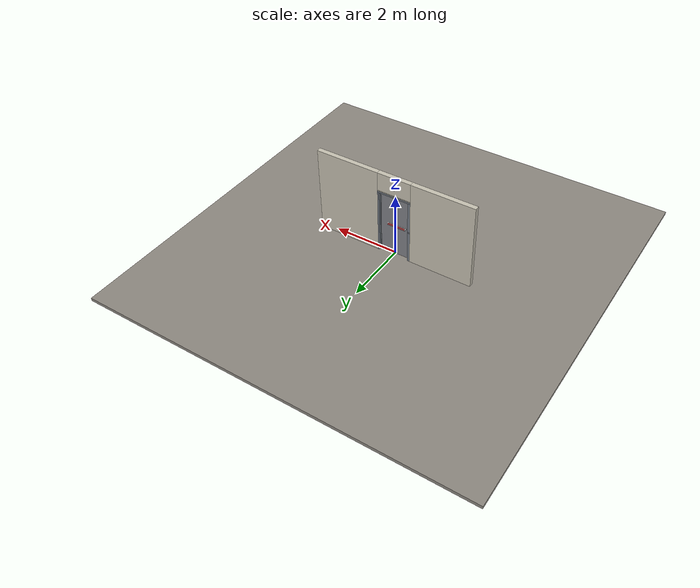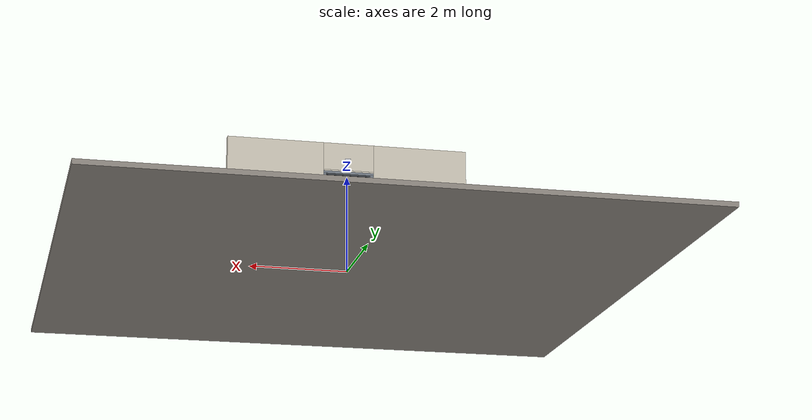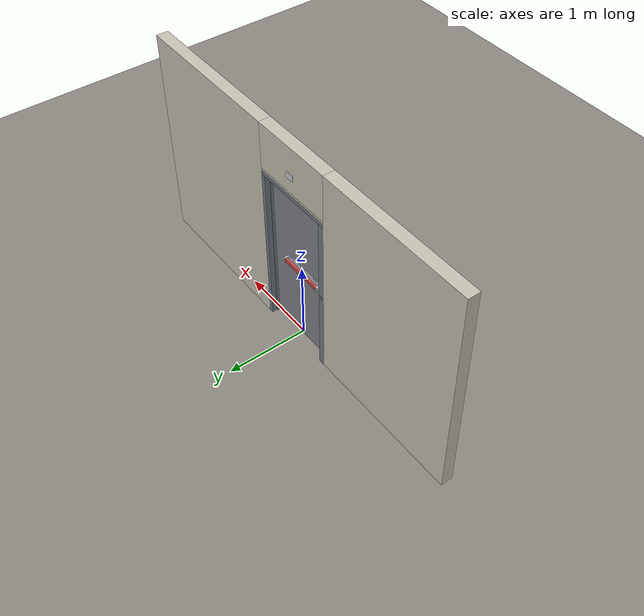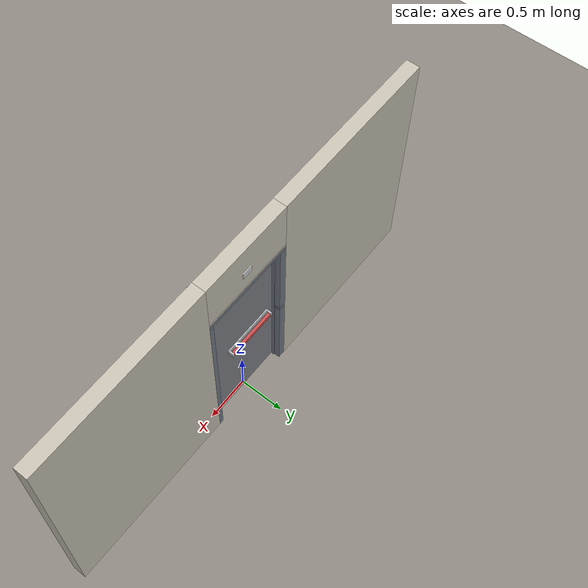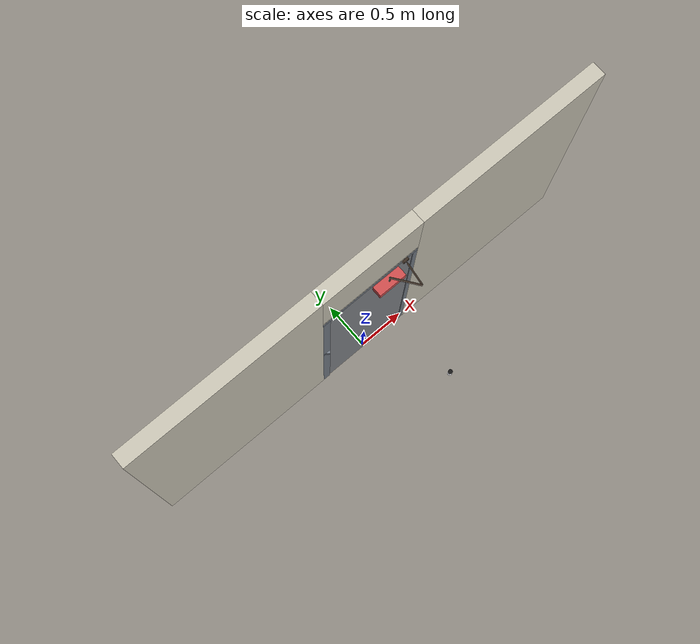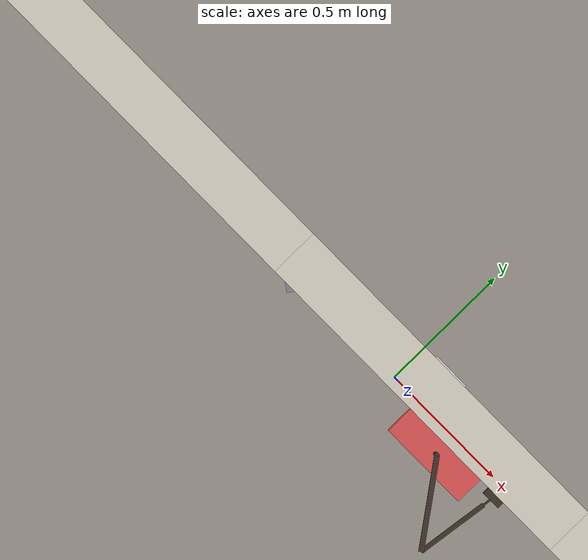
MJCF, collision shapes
<?xml version="1.0" ?>
<mujoco model="db0024_swing_single_full">
  <compiler angle="radian" meshdir="../../hardware" texturedir="../../textures" autolimits="true" inertiafromgeom="false"/>
  <option timestep="0.002" integrator="implicitfast" cone="elliptic" impratio="10" noslip_iterations="3">
    <flag multiccd="enable"/>
  </option>
  <size memory="16M"/>
  <default>
    <geom condim="4" solref="0.005 1" solimp="0.95 0.99 0.001"/>
    <joint solreflimit="0.005 1" solimplimit="0.95 0.99 0.001"/>
    <tendon solreflimit="0.005 1"/>
    <equality solref="0.002 1"/>
  </default>
  <visual>
    <headlight ambient="0.4 0.4 0.4" diffuse="0.7 0.7 0.7" specular="0.2 0.2 0.2"/>
    <quality shadowsize="4096"/>
    <map znear="0.01" zfar="60"/>
  </visual>
  <asset>
    <mesh name="closer_body_fdc4667657" file="closer_body_fdc4667657.obj"/>
    <mesh name="exit_sign_a6449bfa2c" file="exit_sign_a6449bfa2c.obj"/>
    <mesh name="hinge_e22b26c0c1" file="hinge_e22b26c0c1.obj"/>
    <mesh name="hinge_jamb_e1d088f8dc" file="hinge_jamb_e1d088f8dc.obj"/>
    <mesh name="touchbar_pad_5c88f1c24f" file="touchbar_pad_5c88f1c24f.obj"/>
    <material name="mat_floor" rgba="0.55 0.53 0.5 1" specular="0.2" shininess="0.15" reflectance="0"/>
    <material name="mat_wall" rgba="0.78 0.76 0.7 1" specular="0.2" shininess="0.1" reflectance="0"/>
    <material name="mat_leaf" rgba="0.5 0.51 0.53 1" specular="0.23" shininess="0.39" reflectance="0.02"/>
    <material name="mat_hinge" rgba="0.65 0.66 0.68 1" specular="0.74" shininess="0.5" reflectance="0.36"/>
    <material name="mat_op_stainless" rgba="0.75 0.76 0.77 1" specular="0.8" shininess="0.65" reflectance="0.4"/>
    <material name="mat_bolt" rgba="0.75 0.76 0.77 1" specular="0.8" shininess="0.65" reflectance="0.4"/>
    <material name="mat_frame" rgba="0.45 0.48 0.52 1" specular="0.32" shininess="0.6" reflectance="0.08"/>
    <material name="mat_seal" rgba="0.1 0.1 0.1 1" specular="0.2" shininess="0.1" reflectance="0"/>
    <material name="mat_closer" rgba="0.22 0.17 0.13 1" specular="0.8" shininess="0.6" reflectance="0.4"/>
    <material name="mat_exit_sign" rgba="0.85 0.1 0.1 1" specular="0.2" shininess="0.6" reflectance="0"/>
    <material name="mat_sign_bracket" rgba="0.8 0.81 0.83 1" specular="0.8" shininess="0.6" reflectance="0.4"/>
    <material name="mat_bumper_stop" rgba="0.08 0.08 0.08 1" specular="0.2" shininess="0.1" reflectance="0"/>
    <material name="mat_stop_base" rgba="0.9 0.9 0.92 1" specular="0.8" shininess="0.9" reflectance="0.4"/>
    <texture name="skybox" type="skybox" builtin="gradient" rgb1="0.6 0.7 0.85" rgb2="0.9 0.92 0.95" width="256" height="256"/>
  </asset>
  <worldbody>
    <light name="sun" pos="1.5 -2.5 4" dir="-0.3 0.5 -0.8" directional="true" diffuse="0.8 0.8 0.8" specular="0.3 0.3 0.3" castshadow="true"/>
    <light name="fill" pos="-1.5 2.5 3" dir="0.3 -0.5 -0.7" directional="true" diffuse="0.35 0.35 0.4" castshadow="false"/>
    <camera name="robot_view" pos="0 -2.498687 1.734312" xyaxes="1 0 0 0 0.26963 0.962964" fovy="52"/>
    <camera name="far_view" pos="0 2.585687 1.734312" xyaxes="-1 0 0 0 -0.26963 0.962964" fovy="52"/>
    <camera name="iso" pos="-1.932062 -2.091938 2.141063" xyaxes="0.741536 -0.670913 0 0.242917 0.268487 0.932151" fovy="46"/>
    <camera name="detail_handle" pos="-0.1735 -0.7565 1.32" xyaxes="0.97561 0.219512 0 -0.070934 0.315262 0.94635" fovy="38"/>
    <geom name="floor" type="box" size="6 6 0.05" pos="0 0 -0.05" material="mat_floor" group="0" contype="1" conaffinity="1" friction="0.8 0.005 0.0001" density="2400"/>
    <geom name="wall_left" type="box" size="0.97975 0.0725 1.35" pos="-1.52025 0.0435 1.35" material="mat_wall" group="0" contype="1" conaffinity="1" friction="0.6 0.005 0.0001" density="800"/>
    <geom name="wall_right" type="box" size="0.99475 0.0725 1.35" pos="1.50525 0.0435 1.35" material="mat_wall" group="0" contype="1" conaffinity="1" friction="0.6 0.005 0.0001" density="800"/>
    <geom name="wall_header" type="box" size="0.5255 0.0725 0.2875" pos="-0.015 0.0435 2.4125" material="mat_wall" group="0" contype="1" conaffinity="1" friction="0.6 0.005 0.0001" density="800"/>
    <geom name="hinge_0_jamb" type="mesh" mesh="hinge_jamb_e1d088f8dc" pos="0.4575 -0.029 0.259" quat="0 0 1 0" material="mat_hinge" group="1" contype="0" conaffinity="0" density="7850"/>
    <geom name="hinge_1_jamb" type="mesh" mesh="hinge_jamb_e1d088f8dc" pos="0.4575 -0.029 1.025" quat="0 0 1 0" material="mat_hinge" group="1" contype="0" conaffinity="0" density="7850"/>
    <geom name="hinge_2_jamb" type="mesh" mesh="hinge_jamb_e1d088f8dc" pos="0.4575 -0.029 1.861" quat="0 0 1 0" material="mat_hinge" group="1" contype="0" conaffinity="0" density="7850"/>
    <geom name="jamb_hinge" type="box" size="0.025 0.0725 1.0225" pos="0.4855 0.0435 1.0225" material="mat_frame" group="0" contype="1" conaffinity="1" friction="0.6 0.005 0.0001" density="300"/>
    <geom name="strike_1040_wall_n" type="box" size="0.04 0.05325 0.018" pos="-0.5005 0.06275 1.04" material="mat_frame" group="0" contype="1" conaffinity="1" friction="0.6 0.005 0.0001" density="300"/>
    <geom name="strike_1040_wall_p" type="box" size="0.04 0.008 0.018" pos="-0.5005 -0.0175 1.04" material="mat_frame" group="0" contype="1" conaffinity="1" friction="0.6 0.005 0.0001" density="300"/>
    <geom name="strike_1040_ramp" type="box" size="0.04 0.018028 0.018" pos="-0.503782 -0.018312 1.04" quat="0.957092 0 0 -0.289784" material="mat_frame" group="0" contype="1" conaffinity="1" friction="0.12 0.005 0.0001" density="300"/>
    <geom name="strike_1040_back" type="box" size="0.0285 0.0095 0.018" pos="-0.512 0 1.04" material="mat_frame" group="0" contype="1" conaffinity="1" friction="0.6 0.005 0.0001" density="300"/>
    <geom name="jamb_strike_0" type="box" size="0.04 0.0725 0.511" pos="-0.5005 0.0435 0.511" material="mat_frame" group="0" contype="1" conaffinity="1" friction="0.6 0.005 0.0001" density="300"/>
    <geom name="jamb_strike_1" type="box" size="0.04 0.0725 0.4935" pos="-0.5005 0.0435 1.5515" material="mat_frame" group="0" contype="1" conaffinity="1" friction="0.6 0.005 0.0001" density="300"/>
    <geom name="jamb_head" type="box" size="0.5255 0.0725 0.025" pos="-0.015 0.0435 2.07" material="mat_frame" group="0" contype="1" conaffinity="1" friction="0.6 0.005 0.0001" density="300"/>
    <geom name="head_stud" type="box" size="0.5255 0.0725 0.015" pos="-0.015 0.0435 2.11" material="mat_wall" group="0" contype="1" conaffinity="1" friction="0.6 0.005 0.0001" density="500"/>
    <geom name="stop_hinge" type="box" size="0.0055 0.016 1.0225" pos="0.455 0.0385 1.0225" material="mat_frame" group="0" contype="1" conaffinity="1" friction="0.6 0.005 0.0001" density="300"/>
    <geom name="stop_strike" type="box" size="0.0055 0.016 1.0225" pos="-0.455 0.0385 1.0225" material="mat_frame" group="0" contype="1" conaffinity="1" friction="0.6 0.005 0.0001" density="300"/>
    <geom name="stop_head" type="box" size="0.4605 0.016 0.0055" pos="0 0.0385 2.0395" material="mat_frame" group="0" contype="1" conaffinity="1" friction="0.6 0.005 0.0001" density="300"/>
    <geom name="seal_hinge" type="box" size="0.004 0.0025 1.0225" pos="0.4575 0.0245 1.0225" material="mat_seal" group="1" contype="0" conaffinity="0" density="1100"/>
    <geom name="seal_strike" type="box" size="0.004 0.0025 1.0225" pos="-0.4575 0.0245 1.0225" material="mat_seal" group="1" contype="0" conaffinity="0" density="1100"/>
    <geom name="seal_head" type="box" size="0.4405 0.0025 0.008" pos="0 0.0245 2.033" material="mat_seal" group="1" contype="0" conaffinity="0" density="1100"/>
    <geom name="closer_bracket" type="box" size="0.03 0.012 0.014" pos="0.3605 -0.041 2.075" material="mat_closer" group="1" contype="0" conaffinity="0" density="2700"/>
    <geom name="exit_sign" type="mesh" mesh="exit_sign_a6449bfa2c" pos="0 0.15 2.345" material="mat_exit_sign" group="2" contype="0" conaffinity="0" density="500"/>
    <geom name="exit_sign_bracket" type="box" size="0.05775 0.005 0.035" pos="0 0.1205 2.345" material="mat_sign_bracket" group="2" contype="0" conaffinity="0" density="7850"/>
    <geom name="door_stop_base" type="cylinder" size="0.022 0.003" pos="0.4735 -0.8059 0.003" material="mat_stop_base" group="0" contype="1" conaffinity="1" friction="0.6 0.005 0.0001" density="7850"/>
    <geom name="door_stop_post" type="cylinder" size="0.012 0.0245" pos="0.4735 -0.8059 0.0305" material="mat_stop_base" group="0" contype="1" conaffinity="1" friction="0.6 0.005 0.0001" density="7850"/>
    <geom name="door_stop_bumper" type="cylinder" size="0.022 0.02" pos="0.4735 -0.8059 0.075" material="mat_bumper_stop" group="0" contype="1" conaffinity="1" friction="0.6 0.005 0.0001" density="1100"/>
    <site name="approach_point" pos="0 -1.5 0" quat="1 0 0 0" size="0.05" rgba="0.2 0.9 0.2 0.5" group="4"/>
    <site name="goal_point" pos="0 1.5 0" quat="1 0 0 0" size="0.05" rgba="0.2 0.9 0.2 0.5" group="4"/>
    <site name="door_plane_center" pos="0 0 1.0225" quat="1 0 0 0" size="0.02" rgba="0.2 0.9 0.2 0.5" group="4"/>
    <body name="leaf" pos="0.4605 0 0">
      <inertial pos="-0.419173 -0.016308 1.243445" mass="53.909548" quat="0.519419 -0.51682 -0.467876 -0.494158" diaginertia="3.204963905 22.306769828 25.413464738"/>
      <joint name="leaf_hinge" type="hinge" axis="0 0 1" pos="-0.003 -0.029 0" limited="true" range="0 1.570796" solreflimit="0.02 1" damping="12.25611" frictionloss="2.028006" stiffness="11.567381" springref="-1.882881" armature="0.02"/>
      <geom name="leaf_slab" type="box" size="0.457 0.022 1.016" pos="-0.46 0 1.025" material="mat_leaf" group="0" contype="1" conaffinity="1" friction="0.42 0.005 0.0001" density="1"/>
      <geom name="hinge_0" type="mesh" mesh="hinge_e22b26c0c1" pos="-0.003 -0.029 0.259" quat="0 0 1 0" material="mat_hinge" group="1" contype="0" conaffinity="0" density="7850"/>
      <geom name="hinge_1" type="mesh" mesh="hinge_e22b26c0c1" pos="-0.003 -0.029 1.025" quat="0 0 1 0" material="mat_hinge" group="1" contype="0" conaffinity="0" density="7850"/>
      <geom name="hinge_2" type="mesh" mesh="hinge_e22b26c0c1" pos="-0.003 -0.029 1.861" quat="0 0 1 0" material="mat_hinge" group="1" contype="0" conaffinity="0" density="7850"/>
      <geom name="leaf_exit_device_rail" type="box" size="0.2942 0.006 0.025" pos="-0.5428 0.028 1.04" material="mat_op_stainless" group="0" contype="1" conaffinity="1" friction="0.6 0.005 0.0001" density="3000"/>
      <geom name="leaf_exit_device_rail_end_n" type="box" size="0.01 0.0325 0.025" pos="-0.827 0.0545 1.04" material="mat_op_stainless" group="0" contype="1" conaffinity="1" friction="0.6 0.005 0.0001" density="3000"/>
      <geom name="leaf_exit_device_rail_end_p" type="box" size="0.01 0.0325 0.025" pos="-0.2586 0.0545 1.04" material="mat_op_stainless" group="0" contype="1" conaffinity="1" friction="0.6 0.005 0.0001" density="3000"/>
      <geom name="leaf_latch_bolt_faceplate" type="box" size="0.0006 0.014 0.028" pos="-0.9164 0 1.04" material="mat_bolt" group="1" contype="0" conaffinity="0" density="8500"/>
      <geom name="closer_body" type="mesh" mesh="closer_body_fdc4667657" pos="-0.3 -0.022 1.952" quat="0 0 -0.707107 0.707107" material="mat_closer" group="1" contype="0" conaffinity="0" density="2000"/>
      <geom name="closer_body_col" type="box" size="0.145 0.05 0.035" pos="-0.3 -0.072 1.952" material="mat_closer" group="3" contype="1" conaffinity="1" rgba="0.8 0.3 0.3 0.25" friction="0.6 0.005 0.0001" density="2000"/>
      <geom name="closer_pinion_shaft" type="cylinder" size="0.008 0.0615" pos="-0.3 -0.072 2.0135" material="mat_closer" group="1" contype="0" conaffinity="0" density="2700"/>
      <site name="leaf_edge_mid" pos="-0.917 0 1.016" quat="1 0 0 0" size="0.02" rgba="0.2 0.9 0.2 0.5" group="4"/>
      <body name="leaf_exit_device" pos="-0.5428 0.022 1.04">
        <inertial pos="0 0.05 0" mass="4.39344" quat="0 0 0.707107 0.707107" diaginertia="0.001070901 0.108041192 0.108453077"/>
        <joint name="leaf_exit_device_slide" type="slide" axis="0 -1 0" limited="true" range="0 0.016" damping="153.70715" frictionloss="0.5" stiffness="1300" springref="-0.015385" armature="0.15"/>
        <geom name="leaf_exit_device_pad" type="mesh" mesh="touchbar_pad_5c88f1c24f" pos="0 0 0" quat="0 0 0.707107 0.707107" material="mat_op_stainless" group="1" contype="0" conaffinity="0" density="3000"/>
        <geom name="leaf_exit_device_pad_col" type="box" size="0.2712 0.015 0.0225" pos="0 0.05 0" material="mat_op_stainless" group="3" contype="1" conaffinity="1" rgba="0.8 0.3 0.3 0.25" friction="0.8 0.01 0.0001" density="3000"/>
        <site name="leaf_exit_device_push" pos="0 0.065 0" quat="1 0 0 0" size="0.015" rgba="0.2 0.9 0.2 0.5" group="4"/>
      </body>
      <body name="leaf_latch_bolt" pos="-0.917 0 1.04">
        <inertial pos="0.0055 0 0" mass="0.074627" quat="0.92388 0.382683 0 0" diaginertia="0.000002271 0.000013255 0.000013255"/>
        <joint name="leaf_latch_bolt_slide" type="slide" axis="1 0 0" limited="true" range="0 0.019" damping="2" frictionloss="0.3" stiffness="550" springref="-0.01" armature="0.1"/>
        <geom name="leaf_latch_bolt_capsule" type="capsule" size="0.008 0.0165" pos="0.0055 0 0" quat="0.707107 0 -0.707107 0" material="mat_bolt" group="0" contype="1" conaffinity="1" friction="0.2 0.005 0.0001" density="8500"/>
      </body>
      <body name="closer_arm_main" pos="-0.3 -0.072 2.075" quat="0.890947 0 0 -0.454107">
        <inertial pos="0.14 0 0" mass="0.12096" quat="1 0 0 0" diaginertia="0.000003588 0.00079128 0.000792852"/>
        <joint name="closer_pinion" type="hinge" axis="0 0 1" limited="false" damping="0.01" armature="0.002"/>
        <geom name="closer_arm_main_geom" type="box" size="0.14 0.008 0.005" pos="0.14 0 0" material="mat_closer" group="1" contype="0" conaffinity="0" density="2700"/>
        <body name="closer_arm_fore" pos="0.28 0 0" quat="0.373215 0 0 0.927745">
          <inertial pos="0.128088 0 0" mass="0.076531" quat="1 0 0 0" diaginertia="0.000001771 0.000437665 0.000438201"/>
          <joint name="closer_elbow" type="hinge" axis="0 0 1" limited="false" damping="0.01" armature="0.002"/>
          <geom name="closer_arm_fore_geom" type="box" size="0.1125 0.007 0.004" pos="0.1125 0 0" material="mat_closer" group="1" contype="0" conaffinity="0" density="2700"/>
          <geom name="closer_fore_neck" type="box" size="0.0175 0.003 0.003" pos="0.2425 0 0" material="mat_closer" group="1" contype="0" conaffinity="0" density="2700"/>
          <geom name="closer_fore_pivot" type="cylinder" size="0.005 0.012" pos="0.26 0 0" material="mat_closer" group="1" contype="0" conaffinity="0" density="2700"/>
        </body>
      </body>
    </body>
  </worldbody>
  <tendon>
    <fixed name="leaf_latch_bolt_coupling" limited="true" range="0 10">
      <joint joint="leaf_latch_bolt_slide" coef="1"/>
      <joint joint="leaf_exit_device_slide" coef="-1.357143"/>
    </fixed>
  </tendon>
  <equality>
    <connect name="closer_arm_connect" body1="closer_arm_fore" body2="world" anchor="0.26 0 0" active="true"/>
  </equality>
  <contact>
    <exclude body1="closer_arm_main" body2="leaf"/>
    <exclude body1="closer_arm_fore" body2="leaf"/>
    <exclude body1="closer_arm_main" body2="closer_arm_fore"/>
  </contact>
  <sensor>
    <jointpos name="leaf_hinge_pos" joint="leaf_hinge"/>
    <jointvel name="leaf_hinge_vel" joint="leaf_hinge"/>
    <jointpos name="leaf_exit_device_slide_pos" joint="leaf_exit_device_slide"/>
    <jointvel name="leaf_exit_device_slide_vel" joint="leaf_exit_device_slide"/>
    <jointpos name="leaf_latch_bolt_slide_pos" joint="leaf_latch_bolt_slide"/>
    <jointvel name="leaf_latch_bolt_slide_vel" joint="leaf_latch_bolt_slide"/>
  </sensor>
</mujoco>
